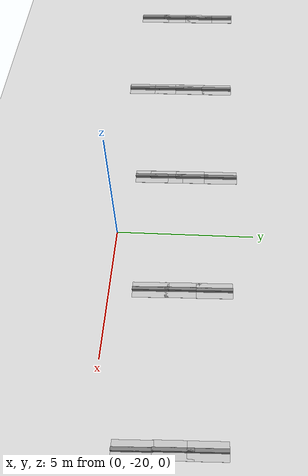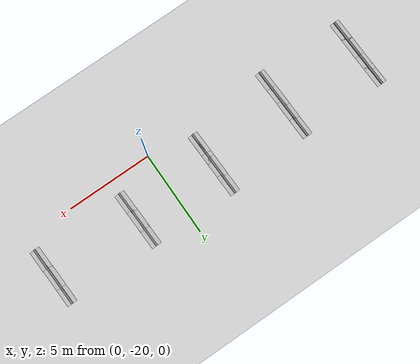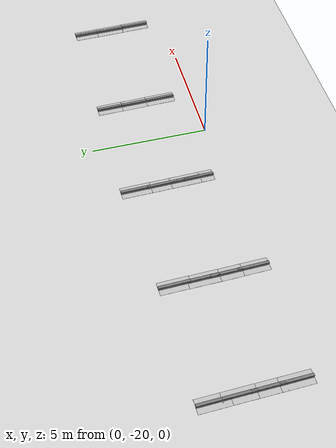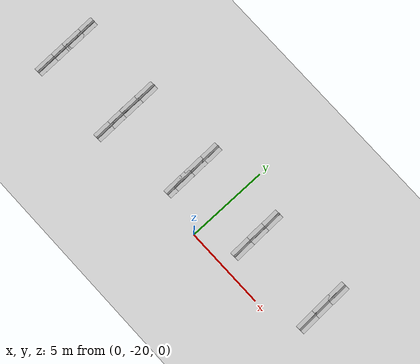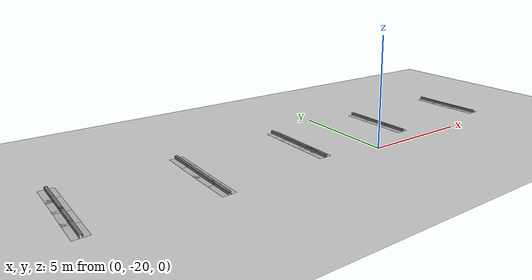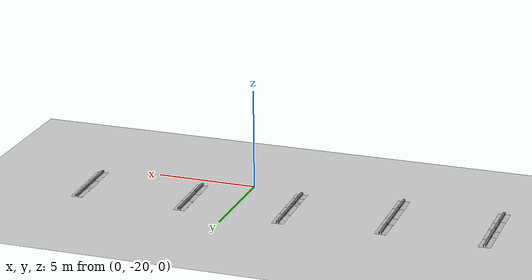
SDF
<sdf version="1.7">
 <world name="default">
  <model name="ground_plane">
   <static>1</static>
   <link name="link">
    <collision name="collision">
     <geometry><plane><normal>0 0 1</normal><size>100 100</size></plane></geometry>
     <surface>
      <contact><collide_bitmask>65535</collide_bitmask></contact>
      <friction><ode><mu>100</mu><mu2>50</mu2></ode></friction>
     </surface>
    </collision>
    <visual name="visual">
     <cast_shadows>0</cast_shadows>
     <geometry><plane><normal>0 0 1</normal><size>100 100</size></plane></geometry>
     <material>
      <script><uri>file://media/materials/scripts/gazebo.material</uri><name>Gazebo/Grey</name></script>
     </material>
    </visual>
   </link>
  </model>
  <model name="frc2016_rockwall_clone_3">
   <static>1</static>
   <link name="link">
    <inertial>
     <mass>10</mass>
     <pose>0 0 0.08974 0 -0 0</pose>
     <inertia><ixx>0.327091</ixx><ixy>0</ixy><ixz>0</ixz><iyy>1.37417</iyy><iyz>0</iyz><izz>1.64109</izz></inertia>
    </inertial>
    <visual name="platform">
     <pose>0 0 0.06432 0 -0 0</pose>
     <geometry><box><size>1.27 0.5969 0.003175</size></box></geometry>
    </visual>
    <collision name="platform">
     <pose>0 0 0.06432 0 -0 0</pose>
     <geometry><box><size>1.27 0.5969 0.003175</size></box></geometry>
    </collision>
    <visual name="up1">
     <pose>0 0.05166 0.12537 0 -0 0</pose>
     <geometry><box><size>1.27 0.00462 0.11892</size></box></geometry>
     <material><ambient>0.46 0.46 0.46 1</ambient><diffuse>0.46 0.46 0.46 1</diffuse></material>
    </visual>
    <collision name="up1">
     <pose>0 0.05166 0.12537 0 -0 0</pose>
     <geometry><box><size>1.27 0.00462 0.11892</size></box></geometry>
    </collision>
    <visual name="up2">
     <pose>0 -0.05801 0.12537 0 -0 0</pose>
     <geometry><box><size>1.27 0.00462 0.11892</size></box></geometry>
     <material><ambient>0.46 0.46 0.46 1</ambient><diffuse>0.46 0.46 0.46 1</diffuse></material>
    </visual>
    <collision name="up2">
     <pose>0 -0.05801 0.12537 0 -0 0</pose>
     <geometry><box><size>1.27 0.00462 0.11892</size></box></geometry>
    </collision>
    <visual name="top">
     <pose>0 -0.00249 0.18252 0 -0 0</pose>
     <geometry><box><size>1.27 0.1143 0.00462</size></box></geometry>
     <material><ambient>0.46 0.46 0.46 1</ambient><diffuse>0.46 0.46 0.46 1</diffuse></material>
    </visual>
    <collision name="top">
     <pose>0 -0.00249 0.18252 0 -0 0</pose>
     <geometry><box><size>1.27 0.1143 0.00462</size></box></geometry>
    </collision>
   </link>
   <pose>7.71965 -16.3662 0 0 -0 1.59626</pose>
  </model>
  <model name="frc2016_rockwall_clone_4">
   <static>1</static>
   <link name="link">
    <inertial>
     <mass>10</mass>
     <pose>0 0 0.08974 0 -0 0</pose>
     <inertia><ixx>0.327091</ixx><ixy>0</ixy><ixz>0</ixz><iyy>1.37417</iyy><iyz>0</iyz><izz>1.64109</izz></inertia>
    </inertial>
    <visual name="platform">
     <pose>0 0 0.06432 0 -0 0</pose>
     <geometry><box><size>1.27 0.5969 0.003175</size></box></geometry>
    </visual>
    <collision name="platform">
     <pose>0 0 0.06432 0 -0 0</pose>
     <geometry><box><size>1.27 0.5969 0.003175</size></box></geometry>
    </collision>
    <visual name="up1">
     <pose>0 0.05166 0.12537 0 -0 0</pose>
     <geometry><box><size>1.27 0.00462 0.11892</size></box></geometry>
     <material><ambient>0.46 0.46 0.46 1</ambient><diffuse>0.46 0.46 0.46 1</diffuse></material>
    </visual>
    <collision name="up1">
     <pose>0 0.05166 0.12537 0 -0 0</pose>
     <geometry><box><size>1.27 0.00462 0.11892</size></box></geometry>
    </collision>
    <visual name="up2">
     <pose>0 -0.05801 0.12537 0 -0 0</pose>
     <geometry><box><size>1.27 0.00462 0.11892</size></box></geometry>
     <material><ambient>0.46 0.46 0.46 1</ambient><diffuse>0.46 0.46 0.46 1</diffuse></material>
    </visual>
    <collision name="up2">
     <pose>0 -0.05801 0.12537 0 -0 0</pose>
     <geometry><box><size>1.27 0.00462 0.11892</size></box></geometry>
    </collision>
    <visual name="top">
     <pose>0 -0.00249 0.18252 0 -0 0</pose>
     <geometry><box><size>1.27 0.1143 0.00462</size></box></geometry>
     <material><ambient>0.46 0.46 0.46 1</ambient><diffuse>0.46 0.46 0.46 1</diffuse></material>
    </visual>
    <collision name="top">
     <pose>0 -0.00249 0.18252 0 -0 0</pose>
     <geometry><box><size>1.27 0.1143 0.00462</size></box></geometry>
    </collision>
   </link>
   <pose>7.7425 -17.4078 0 0 -0 1.59626</pose>
  </model>
  <model name="frc2016_rockwall_clone_5">
   <static>1</static>
   <link name="link">
    <inertial>
     <mass>10</mass>
     <pose>0 0 0.08974 0 -0 0</pose>
     <inertia><ixx>0.327091</ixx><ixy>0</ixy><ixz>0</ixz><iyy>1.37417</iyy><iyz>0</iyz><izz>1.64109</izz></inertia>
    </inertial>
    <visual name="platform">
     <pose>0 0 0.06432 0 -0 0</pose>
     <geometry><box><size>1.27 0.5969 0.003175</size></box></geometry>
    </visual>
    <collision name="platform">
     <pose>0 0 0.06432 0 -0 0</pose>
     <geometry><box><size>1.27 0.5969 0.003175</size></box></geometry>
    </collision>
    <visual name="up1">
     <pose>0 0.05166 0.12537 0 -0 0</pose>
     <geometry><box><size>1.27 0.00462 0.11892</size></box></geometry>
     <material><ambient>0.46 0.46 0.46 1</ambient><diffuse>0.46 0.46 0.46 1</diffuse></material>
    </visual>
    <collision name="up1">
     <pose>0 0.05166 0.12537 0 -0 0</pose>
     <geometry><box><size>1.27 0.00462 0.11892</size></box></geometry>
    </collision>
    <visual name="up2">
     <pose>0 -0.05801 0.12537 0 -0 0</pose>
     <geometry><box><size>1.27 0.00462 0.11892</size></box></geometry>
     <material><ambient>0.46 0.46 0.46 1</ambient><diffuse>0.46 0.46 0.46 1</diffuse></material>
    </visual>
    <collision name="up2">
     <pose>0 -0.05801 0.12537 0 -0 0</pose>
     <geometry><box><size>1.27 0.00462 0.11892</size></box></geometry>
    </collision>
    <visual name="top">
     <pose>0 -0.00249 0.18252 0 -0 0</pose>
     <geometry><box><size>1.27 0.1143 0.00462</size></box></geometry>
     <material><ambient>0.46 0.46 0.46 1</ambient><diffuse>0.46 0.46 0.46 1</diffuse></material>
    </visual>
    <collision name="top">
     <pose>0 -0.00249 0.18252 0 -0 0</pose>
     <geometry><box><size>1.27 0.1143 0.00462</size></box></geometry>
    </collision>
   </link>
   <pose>7.78797 -18.6274 0 0 -0 1.59626</pose>
  </model>
  <model name="frc2016_rockwall_clone_11">
   <static>1</static>
   <link name="link">
    <inertial>
     <mass>10</mass>
     <pose>0 0 0.08974 0 -0 0</pose>
     <inertia><ixx>0.327091</ixx><ixy>0</ixy><ixz>0</ixz><iyy>1.37417</iyy><iyz>0</iyz><izz>1.64109</izz></inertia>
    </inertial>
    <visual name="platform">
     <pose>0 0 0.06432 0 -0 0</pose>
     <geometry><box><size>1.27 0.5969 0.003175</size></box></geometry>
    </visual>
    <collision name="platform">
     <pose>0 0 0.06432 0 -0 0</pose>
     <geometry><box><size>1.27 0.5969 0.003175</size></box></geometry>
    </collision>
    <visual name="up1">
     <pose>0 0.05166 0.12537 0 -0 0</pose>
     <geometry><box><size>1.27 0.00462 0.11892</size></box></geometry>
     <material><ambient>0.46 0.46 0.46 1</ambient><diffuse>0.46 0.46 0.46 1</diffuse></material>
    </visual>
    <collision name="up1">
     <pose>0 0.05166 0.12537 0 -0 0</pose>
     <geometry><box><size>1.27 0.00462 0.11892</size></box></geometry>
    </collision>
    <visual name="up2">
     <pose>0 -0.05801 0.12537 0 -0 0</pose>
     <geometry><box><size>1.27 0.00462 0.11892</size></box></geometry>
     <material><ambient>0.46 0.46 0.46 1</ambient><diffuse>0.46 0.46 0.46 1</diffuse></material>
    </visual>
    <collision name="up2">
     <pose>0 -0.05801 0.12537 0 -0 0</pose>
     <geometry><box><size>1.27 0.00462 0.11892</size></box></geometry>
    </collision>
    <visual name="top">
     <pose>0 -0.00249 0.18252 0 -0 0</pose>
     <geometry><box><size>1.27 0.1143 0.00462</size></box></geometry>
     <material><ambient>0.46 0.46 0.46 1</ambient><diffuse>0.46 0.46 0.46 1</diffuse></material>
    </visual>
    <collision name="top">
     <pose>0 -0.00249 0.18252 0 -0 0</pose>
     <geometry><box><size>1.27 0.1143 0.00462</size></box></geometry>
    </collision>
   </link>
   <pose>2.3436 -16.3416 0 0 -0 1.59626</pose>
  </model>
  <model name="frc2016_rockwall_clone_12">
   <static>1</static>
   <link name="link">
    <inertial>
     <mass>10</mass>
     <pose>0 0 0.08974 0 -0 0</pose>
     <inertia><ixx>0.327091</ixx><ixy>0</ixy><ixz>0</ixz><iyy>1.37417</iyy><iyz>0</iyz><izz>1.64109</izz></inertia>
    </inertial>
    <visual name="platform">
     <pose>0 0 0.06432 0 -0 0</pose>
     <geometry><box><size>1.27 0.5969 0.003175</size></box></geometry>
    </visual>
    <collision name="platform">
     <pose>0 0 0.06432 0 -0 0</pose>
     <geometry><box><size>1.27 0.5969 0.003175</size></box></geometry>
    </collision>
    <visual name="up1">
     <pose>0 0.05166 0.12537 0 -0 0</pose>
     <geometry><box><size>1.27 0.00462 0.11892</size></box></geometry>
     <material><ambient>0.46 0.46 0.46 1</ambient><diffuse>0.46 0.46 0.46 1</diffuse></material>
    </visual>
    <collision name="up1">
     <pose>0 0.05166 0.12537 0 -0 0</pose>
     <geometry><box><size>1.27 0.00462 0.11892</size></box></geometry>
    </collision>
    <visual name="up2">
     <pose>0 -0.05801 0.12537 0 -0 0</pose>
     <geometry><box><size>1.27 0.00462 0.11892</size></box></geometry>
     <material><ambient>0.46 0.46 0.46 1</ambient><diffuse>0.46 0.46 0.46 1</diffuse></material>
    </visual>
    <collision name="up2">
     <pose>0 -0.05801 0.12537 0 -0 0</pose>
     <geometry><box><size>1.27 0.00462 0.11892</size></box></geometry>
    </collision>
    <visual name="top">
     <pose>0 -0.00249 0.18252 0 -0 0</pose>
     <geometry><box><size>1.27 0.1143 0.00462</size></box></geometry>
     <material><ambient>0.46 0.46 0.46 1</ambient><diffuse>0.46 0.46 0.46 1</diffuse></material>
    </visual>
    <collision name="top">
     <pose>0 -0.00249 0.18252 0 -0 0</pose>
     <geometry><box><size>1.27 0.1143 0.00462</size></box></geometry>
    </collision>
   </link>
   <pose>2.36356 -17.4332 0 0 -0 1.59626</pose>
  </model>
  <model name="frc2016_rockwall_clone_13">
   <static>1</static>
   <link name="link">
    <inertial>
     <mass>10</mass>
     <pose>0 0 0.08974 0 -0 0</pose>
     <inertia><ixx>0.327091</ixx><ixy>0</ixy><ixz>0</ixz><iyy>1.37417</iyy><iyz>0</iyz><izz>1.64109</izz></inertia>
    </inertial>
    <visual name="platform">
     <pose>0 0 0.06432 0 -0 0</pose>
     <geometry><box><size>1.27 0.5969 0.003175</size></box></geometry>
    </visual>
    <collision name="platform">
     <pose>0 0 0.06432 0 -0 0</pose>
     <geometry><box><size>1.27 0.5969 0.003175</size></box></geometry>
    </collision>
    <visual name="up1">
     <pose>0 0.05166 0.12537 0 -0 0</pose>
     <geometry><box><size>1.27 0.00462 0.11892</size></box></geometry>
     <material><ambient>0.46 0.46 0.46 1</ambient><diffuse>0.46 0.46 0.46 1</diffuse></material>
    </visual>
    <collision name="up1">
     <pose>0 0.05166 0.12537 0 -0 0</pose>
     <geometry><box><size>1.27 0.00462 0.11892</size></box></geometry>
    </collision>
    <visual name="up2">
     <pose>0 -0.05801 0.12537 0 -0 0</pose>
     <geometry><box><size>1.27 0.00462 0.11892</size></box></geometry>
     <material><ambient>0.46 0.46 0.46 1</ambient><diffuse>0.46 0.46 0.46 1</diffuse></material>
    </visual>
    <collision name="up2">
     <pose>0 -0.05801 0.12537 0 -0 0</pose>
     <geometry><box><size>1.27 0.00462 0.11892</size></box></geometry>
    </collision>
    <visual name="top">
     <pose>0 -0.00249 0.18252 0 -0 0</pose>
     <geometry><box><size>1.27 0.1143 0.00462</size></box></geometry>
     <material><ambient>0.46 0.46 0.46 1</ambient><diffuse>0.46 0.46 0.46 1</diffuse></material>
    </visual>
    <collision name="top">
     <pose>0 -0.00249 0.18252 0 -0 0</pose>
     <geometry><box><size>1.27 0.1143 0.00462</size></box></geometry>
    </collision>
   </link>
   <pose>2.39785 -18.5562 0 0 -0 1.59626</pose>
  </model>
  <model name="frc2016_rockwall_clone_19">
   <static>1</static>
   <link name="link">
    <inertial>
     <mass>10</mass>
     <pose>0 0 0.08974 0 -0 0</pose>
     <inertia><ixx>0.327091</ixx><ixy>0</ixy><ixz>0</ixz><iyy>1.37417</iyy><iyz>0</iyz><izz>1.64109</izz></inertia>
    </inertial>
    <visual name="platform">
     <pose>0 0 0.06432 0 -0 0</pose>
     <geometry><box><size>1.27 0.5969 0.003175</size></box></geometry>
    </visual>
    <collision name="platform">
     <pose>0 0 0.06432 0 -0 0</pose>
     <geometry><box><size>1.27 0.5969 0.003175</size></box></geometry>
    </collision>
    <visual name="up1">
     <pose>0 0.05166 0.12537 0 -0 0</pose>
     <geometry><box><size>1.27 0.00462 0.11892</size></box></geometry>
     <material><ambient>0.46 0.46 0.46 1</ambient><diffuse>0.46 0.46 0.46 1</diffuse></material>
    </visual>
    <collision name="up1">
     <pose>0 0.05166 0.12537 0 -0 0</pose>
     <geometry><box><size>1.27 0.00462 0.11892</size></box></geometry>
    </collision>
    <visual name="up2">
     <pose>0 -0.05801 0.12537 0 -0 0</pose>
     <geometry><box><size>1.27 0.00462 0.11892</size></box></geometry>
     <material><ambient>0.46 0.46 0.46 1</ambient><diffuse>0.46 0.46 0.46 1</diffuse></material>
    </visual>
    <collision name="up2">
     <pose>0 -0.05801 0.12537 0 -0 0</pose>
     <geometry><box><size>1.27 0.00462 0.11892</size></box></geometry>
    </collision>
    <visual name="top">
     <pose>0 -0.00249 0.18252 0 -0 0</pose>
     <geometry><box><size>1.27 0.1143 0.00462</size></box></geometry>
     <material><ambient>0.46 0.46 0.46 1</ambient><diffuse>0.46 0.46 0.46 1</diffuse></material>
    </visual>
    <collision name="top">
     <pose>0 -0.00249 0.18252 0 -0 0</pose>
     <geometry><box><size>1.27 0.1143 0.00462</size></box></geometry>
    </collision>
   </link>
   <pose>-2.71544 -16.2668 0 0 -0 1.59626</pose>
  </model>
  <model name="frc2016_rockwall_clone_20">
   <static>1</static>
   <link name="link">
    <inertial>
     <mass>10</mass>
     <pose>0 0 0.08974 0 -0 0</pose>
     <inertia><ixx>0.327091</ixx><ixy>0</ixy><ixz>0</ixz><iyy>1.37417</iyy><iyz>0</iyz><izz>1.64109</izz></inertia>
    </inertial>
    <visual name="platform">
     <pose>0 0 0.06432 0 -0 0</pose>
     <geometry><box><size>1.27 0.5969 0.003175</size></box></geometry>
    </visual>
    <collision name="platform">
     <pose>0 0 0.06432 0 -0 0</pose>
     <geometry><box><size>1.27 0.5969 0.003175</size></box></geometry>
    </collision>
    <visual name="up1">
     <pose>0 0.05166 0.12537 0 -0 0</pose>
     <geometry><box><size>1.27 0.00462 0.11892</size></box></geometry>
     <material><ambient>0.46 0.46 0.46 1</ambient><diffuse>0.46 0.46 0.46 1</diffuse></material>
    </visual>
    <collision name="up1">
     <pose>0 0.05166 0.12537 0 -0 0</pose>
     <geometry><box><size>1.27 0.00462 0.11892</size></box></geometry>
    </collision>
    <visual name="up2">
     <pose>0 -0.05801 0.12537 0 -0 0</pose>
     <geometry><box><size>1.27 0.00462 0.11892</size></box></geometry>
     <material><ambient>0.46 0.46 0.46 1</ambient><diffuse>0.46 0.46 0.46 1</diffuse></material>
    </visual>
    <collision name="up2">
     <pose>0 -0.05801 0.12537 0 -0 0</pose>
     <geometry><box><size>1.27 0.00462 0.11892</size></box></geometry>
    </collision>
    <visual name="top">
     <pose>0 -0.00249 0.18252 0 -0 0</pose>
     <geometry><box><size>1.27 0.1143 0.00462</size></box></geometry>
     <material><ambient>0.46 0.46 0.46 1</ambient><diffuse>0.46 0.46 0.46 1</diffuse></material>
    </visual>
    <collision name="top">
     <pose>0 -0.00249 0.18252 0 -0 0</pose>
     <geometry><box><size>1.27 0.1143 0.00462</size></box></geometry>
    </collision>
   </link>
   <pose>-2.69619 -17.3836 0 0 -0 1.59626</pose>
  </model>
  <model name="frc2016_rockwall_clone_21">
   <static>1</static>
   <link name="link">
    <inertial>
     <mass>10</mass>
     <pose>0 0 0.08974 0 -0 0</pose>
     <inertia><ixx>0.327091</ixx><ixy>0</ixy><ixz>0</ixz><iyy>1.37417</iyy><iyz>0</iyz><izz>1.64109</izz></inertia>
    </inertial>
    <visual name="platform">
     <pose>0 0 0.06432 0 -0 0</pose>
     <geometry><box><size>1.27 0.5969 0.003175</size></box></geometry>
    </visual>
    <collision name="platform">
     <pose>0 0 0.06432 0 -0 0</pose>
     <geometry><box><size>1.27 0.5969 0.003175</size></box></geometry>
    </collision>
    <visual name="up1">
     <pose>0 0.05166 0.12537 0 -0 0</pose>
     <geometry><box><size>1.27 0.00462 0.11892</size></box></geometry>
     <material><ambient>0.46 0.46 0.46 1</ambient><diffuse>0.46 0.46 0.46 1</diffuse></material>
    </visual>
    <collision name="up1">
     <pose>0 0.05166 0.12537 0 -0 0</pose>
     <geometry><box><size>1.27 0.00462 0.11892</size></box></geometry>
    </collision>
    <visual name="up2">
     <pose>0 -0.05801 0.12537 0 -0 0</pose>
     <geometry><box><size>1.27 0.00462 0.11892</size></box></geometry>
     <material><ambient>0.46 0.46 0.46 1</ambient><diffuse>0.46 0.46 0.46 1</diffuse></material>
    </visual>
    <collision name="up2">
     <pose>0 -0.05801 0.12537 0 -0 0</pose>
     <geometry><box><size>1.27 0.00462 0.11892</size></box></geometry>
    </collision>
    <visual name="top">
     <pose>0 -0.00249 0.18252 0 -0 0</pose>
     <geometry><box><size>1.27 0.1143 0.00462</size></box></geometry>
     <material><ambient>0.46 0.46 0.46 1</ambient><diffuse>0.46 0.46 0.46 1</diffuse></material>
    </visual>
    <collision name="top">
     <pose>0 -0.00249 0.18252 0 -0 0</pose>
     <geometry><box><size>1.27 0.1143 0.00462</size></box></geometry>
    </collision>
   </link>
   <pose>-2.67398 -18.3761 0 0 -0 1.59626</pose>
  </model>
  <model name="frc2016_rockwall_clone_22">
   <static>1</static>
   <link name="link">
    <inertial>
     <mass>10</mass>
     <pose>0 0 0.08974 0 -0 0</pose>
     <inertia><ixx>0.327091</ixx><ixy>0</ixy><ixz>0</ixz><iyy>1.37417</iyy><iyz>0</iyz><izz>1.64109</izz></inertia>
    </inertial>
    <visual name="platform">
     <pose>0 0 0.06432 0 -0 0</pose>
     <geometry><box><size>1.27 0.5969 0.003175</size></box></geometry>
    </visual>
    <collision name="platform">
     <pose>0 0 0.06432 0 -0 0</pose>
     <geometry><box><size>1.27 0.5969 0.003175</size></box></geometry>
    </collision>
    <visual name="up1">
     <pose>0 0.05166 0.12537 0 -0 0</pose>
     <geometry><box><size>1.27 0.00462 0.11892</size></box></geometry>
     <material><ambient>0.46 0.46 0.46 1</ambient><diffuse>0.46 0.46 0.46 1</diffuse></material>
    </visual>
    <collision name="up1">
     <pose>0 0.05166 0.12537 0 -0 0</pose>
     <geometry><box><size>1.27 0.00462 0.11892</size></box></geometry>
    </collision>
    <visual name="up2">
     <pose>0 -0.05801 0.12537 0 -0 0</pose>
     <geometry><box><size>1.27 0.00462 0.11892</size></box></geometry>
     <material><ambient>0.46 0.46 0.46 1</ambient><diffuse>0.46 0.46 0.46 1</diffuse></material>
    </visual>
    <collision name="up2">
     <pose>0 -0.05801 0.12537 0 -0 0</pose>
     <geometry><box><size>1.27 0.00462 0.11892</size></box></geometry>
    </collision>
    <visual name="top">
     <pose>0 -0.00249 0.18252 0 -0 0</pose>
     <geometry><box><size>1.27 0.1143 0.00462</size></box></geometry>
     <material><ambient>0.46 0.46 0.46 1</ambient><diffuse>0.46 0.46 0.46 1</diffuse></material>
    </visual>
    <collision name="top">
     <pose>0 -0.00249 0.18252 0 -0 0</pose>
     <geometry><box><size>1.27 0.1143 0.00462</size></box></geometry>
    </collision>
   </link>
   <pose>-2.66459 -18.9464 0 0 -0 1.59626</pose>
  </model>
  <model name="frc2016_rockwall_clone_28">
   <static>1</static>
   <link name="link">
    <inertial>
     <mass>10</mass>
     <pose>0 0 0.08974 0 -0 0</pose>
     <inertia><ixx>0.327091</ixx><ixy>0</ixy><ixz>0</ixz><iyy>1.37417</iyy><iyz>0</iyz><izz>1.64109</izz></inertia>
    </inertial>
    <visual name="platform">
     <pose>0 0 0.06432 0 -0 0</pose>
     <geometry><box><size>1.27 0.5969 0.003175</size></box></geometry>
    </visual>
    <collision name="platform">
     <pose>0 0 0.06432 0 -0 0</pose>
     <geometry><box><size>1.27 0.5969 0.003175</size></box></geometry>
    </collision>
    <visual name="up1">
     <pose>0 0.05166 0.12537 0 -0 0</pose>
     <geometry><box><size>1.27 0.00462 0.11892</size></box></geometry>
     <material><ambient>0.46 0.46 0.46 1</ambient><diffuse>0.46 0.46 0.46 1</diffuse></material>
    </visual>
    <collision name="up1">
     <pose>0 0.05166 0.12537 0 -0 0</pose>
     <geometry><box><size>1.27 0.00462 0.11892</size></box></geometry>
    </collision>
    <visual name="up2">
     <pose>0 -0.05801 0.12537 0 -0 0</pose>
     <geometry><box><size>1.27 0.00462 0.11892</size></box></geometry>
     <material><ambient>0.46 0.46 0.46 1</ambient><diffuse>0.46 0.46 0.46 1</diffuse></material>
    </visual>
    <collision name="up2">
     <pose>0 -0.05801 0.12537 0 -0 0</pose>
     <geometry><box><size>1.27 0.00462 0.11892</size></box></geometry>
    </collision>
    <visual name="top">
     <pose>0 -0.00249 0.18252 0 -0 0</pose>
     <geometry><box><size>1.27 0.1143 0.00462</size></box></geometry>
     <material><ambient>0.46 0.46 0.46 1</ambient><diffuse>0.46 0.46 0.46 1</diffuse></material>
    </visual>
    <collision name="top">
     <pose>0 -0.00249 0.18252 0 -0 0</pose>
     <geometry><box><size>1.27 0.1143 0.00462</size></box></geometry>
    </collision>
   </link>
   <pose>-7.72585 -16.5732 0 0 -0 1.59626</pose>
  </model>
  <model name="frc2016_rockwall_clone_29">
   <static>1</static>
   <link name="link">
    <inertial>
     <mass>10</mass>
     <pose>0 0 0.08974 0 -0 0</pose>
     <inertia><ixx>0.327091</ixx><ixy>0</ixy><ixz>0</ixz><iyy>1.37417</iyy><iyz>0</iyz><izz>1.64109</izz></inertia>
    </inertial>
    <visual name="platform">
     <pose>0 0 0.06432 0 -0 0</pose>
     <geometry><box><size>1.27 0.5969 0.003175</size></box></geometry>
    </visual>
    <collision name="platform">
     <pose>0 0 0.06432 0 -0 0</pose>
     <geometry><box><size>1.27 0.5969 0.003175</size></box></geometry>
    </collision>
    <visual name="up1">
     <pose>0 0.05166 0.12537 0 -0 0</pose>
     <geometry><box><size>1.27 0.00462 0.11892</size></box></geometry>
     <material><ambient>0.46 0.46 0.46 1</ambient><diffuse>0.46 0.46 0.46 1</diffuse></material>
    </visual>
    <collision name="up1">
     <pose>0 0.05166 0.12537 0 -0 0</pose>
     <geometry><box><size>1.27 0.00462 0.11892</size></box></geometry>
    </collision>
    <visual name="up2">
     <pose>0 -0.05801 0.12537 0 -0 0</pose>
     <geometry><box><size>1.27 0.00462 0.11892</size></box></geometry>
     <material><ambient>0.46 0.46 0.46 1</ambient><diffuse>0.46 0.46 0.46 1</diffuse></material>
    </visual>
    <collision name="up2">
     <pose>0 -0.05801 0.12537 0 -0 0</pose>
     <geometry><box><size>1.27 0.00462 0.11892</size></box></geometry>
    </collision>
    <visual name="top">
     <pose>0 -0.00249 0.18252 0 -0 0</pose>
     <geometry><box><size>1.27 0.1143 0.00462</size></box></geometry>
     <material><ambient>0.46 0.46 0.46 1</ambient><diffuse>0.46 0.46 0.46 1</diffuse></material>
    </visual>
    <collision name="top">
     <pose>0 -0.00249 0.18252 0 -0 0</pose>
     <geometry><box><size>1.27 0.1143 0.00462</size></box></geometry>
    </collision>
   </link>
   <pose>-7.70714 -17.7211 0 0 -0 1.59626</pose>
  </model>
  <model name="frc2016_rockwall_clone_30">
   <static>1</static>
   <link name="link">
    <inertial>
     <mass>10</mass>
     <pose>0 0 0.08974 0 -0 0</pose>
     <inertia><ixx>0.327091</ixx><ixy>0</ixy><ixz>0</ixz><iyy>1.37417</iyy><iyz>0</iyz><izz>1.64109</izz></inertia>
    </inertial>
    <visual name="platform">
     <pose>0 0 0.06432 0 -0 0</pose>
     <geometry><box><size>1.27 0.5969 0.003175</size></box></geometry>
    </visual>
    <collision name="platform">
     <pose>0 0 0.06432 0 -0 0</pose>
     <geometry><box><size>1.27 0.5969 0.003175</size></box></geometry>
    </collision>
    <visual name="up1">
     <pose>0 0.05166 0.12537 0 -0 0</pose>
     <geometry><box><size>1.27 0.00462 0.11892</size></box></geometry>
     <material><ambient>0.46 0.46 0.46 1</ambient><diffuse>0.46 0.46 0.46 1</diffuse></material>
    </visual>
    <collision name="up1">
     <pose>0 0.05166 0.12537 0 -0 0</pose>
     <geometry><box><size>1.27 0.00462 0.11892</size></box></geometry>
    </collision>
    <visual name="up2">
     <pose>0 -0.05801 0.12537 0 -0 0</pose>
     <geometry><box><size>1.27 0.00462 0.11892</size></box></geometry>
     <material><ambient>0.46 0.46 0.46 1</ambient><diffuse>0.46 0.46 0.46 1</diffuse></material>
    </visual>
    <collision name="up2">
     <pose>0 -0.05801 0.12537 0 -0 0</pose>
     <geometry><box><size>1.27 0.00462 0.11892</size></box></geometry>
    </collision>
    <visual name="top">
     <pose>0 -0.00249 0.18252 0 -0 0</pose>
     <geometry><box><size>1.27 0.1143 0.00462</size></box></geometry>
     <material><ambient>0.46 0.46 0.46 1</ambient><diffuse>0.46 0.46 0.46 1</diffuse></material>
    </visual>
    <collision name="top">
     <pose>0 -0.00249 0.18252 0 -0 0</pose>
     <geometry><box><size>1.27 0.1143 0.00462</size></box></geometry>
    </collision>
   </link>
   <pose>-7.69174 -18.6256 0 0 -0 1.59626</pose>
  </model>
  <model name="frc2016_rockwall_clone_31">
   <static>1</static>
   <link name="link">
    <inertial>
     <mass>10</mass>
     <pose>0 0 0.08974 0 -0 0</pose>
     <inertia><ixx>0.327091</ixx><ixy>0</ixy><ixz>0</ixz><iyy>1.37417</iyy><iyz>0</iyz><izz>1.64109</izz></inertia>
    </inertial>
    <visual name="platform">
     <pose>0 0 0.06432 0 -0 0</pose>
     <geometry><box><size>1.27 0.5969 0.003175</size></box></geometry>
    </visual>
    <collision name="platform">
     <pose>0 0 0.06432 0 -0 0</pose>
     <geometry><box><size>1.27 0.5969 0.003175</size></box></geometry>
    </collision>
    <visual name="up1">
     <pose>0 0.05166 0.12537 0 -0 0</pose>
     <geometry><box><size>1.27 0.00462 0.11892</size></box></geometry>
     <material><ambient>0.46 0.46 0.46 1</ambient><diffuse>0.46 0.46 0.46 1</diffuse></material>
    </visual>
    <collision name="up1">
     <pose>0 0.05166 0.12537 0 -0 0</pose>
     <geometry><box><size>1.27 0.00462 0.11892</size></box></geometry>
    </collision>
    <visual name="up2">
     <pose>0 -0.05801 0.12537 0 -0 0</pose>
     <geometry><box><size>1.27 0.00462 0.11892</size></box></geometry>
     <material><ambient>0.46 0.46 0.46 1</ambient><diffuse>0.46 0.46 0.46 1</diffuse></material>
    </visual>
    <collision name="up2">
     <pose>0 -0.05801 0.12537 0 -0 0</pose>
     <geometry><box><size>1.27 0.00462 0.11892</size></box></geometry>
    </collision>
    <visual name="top">
     <pose>0 -0.00249 0.18252 0 -0 0</pose>
     <geometry><box><size>1.27 0.1143 0.00462</size></box></geometry>
     <material><ambient>0.46 0.46 0.46 1</ambient><diffuse>0.46 0.46 0.46 1</diffuse></material>
    </visual>
    <collision name="top">
     <pose>0 -0.00249 0.18252 0 -0 0</pose>
     <geometry><box><size>1.27 0.1143 0.00462</size></box></geometry>
    </collision>
   </link>
   <pose>-7.65955 -19.7047 0 0 -0 1.59626</pose>
  </model>
  <model name="frc2016_rockwall_clone_39">
   <static>1</static>
   <link name="link">
    <inertial>
     <mass>10</mass>
     <pose>0 0 0.08974 0 -0 0</pose>
     <inertia><ixx>0.327091</ixx><ixy>0</ixy><ixz>0</ixz><iyy>1.37417</iyy><iyz>0</iyz><izz>1.64109</izz></inertia>
    </inertial>
    <visual name="platform">
     <pose>0 0 0.06432 0 -0 0</pose>
     <geometry><box><size>1.27 0.5969 0.003175</size></box></geometry>
    </visual>
    <collision name="platform">
     <pose>0 0 0.06432 0 -0 0</pose>
     <geometry><box><size>1.27 0.5969 0.003175</size></box></geometry>
    </collision>
    <visual name="up1">
     <pose>0 0.05166 0.12537 0 -0 0</pose>
     <geometry><box><size>1.27 0.00462 0.11892</size></box></geometry>
     <material><ambient>0.46 0.46 0.46 1</ambient><diffuse>0.46 0.46 0.46 1</diffuse></material>
    </visual>
    <collision name="up1">
     <pose>0 0.05166 0.12537 0 -0 0</pose>
     <geometry><box><size>1.27 0.00462 0.11892</size></box></geometry>
    </collision>
    <visual name="up2">
     <pose>0 -0.05801 0.12537 0 -0 0</pose>
     <geometry><box><size>1.27 0.00462 0.11892</size></box></geometry>
     <material><ambient>0.46 0.46 0.46 1</ambient><diffuse>0.46 0.46 0.46 1</diffuse></material>
    </visual>
    <collision name="up2">
     <pose>0 -0.05801 0.12537 0 -0 0</pose>
     <geometry><box><size>1.27 0.00462 0.11892</size></box></geometry>
    </collision>
    <visual name="top">
     <pose>0 -0.00249 0.18252 0 -0 0</pose>
     <geometry><box><size>1.27 0.1143 0.00462</size></box></geometry>
     <material><ambient>0.46 0.46 0.46 1</ambient><diffuse>0.46 0.46 0.46 1</diffuse></material>
    </visual>
    <collision name="top">
     <pose>0 -0.00249 0.18252 0 -0 0</pose>
     <geometry><box><size>1.27 0.1143 0.00462</size></box></geometry>
    </collision>
   </link>
   <pose>-12.7588 -16.6091 0 0 -0 1.59626</pose>
  </model>
  <model name="frc2016_rockwall_clone_40">
   <static>1</static>
   <link name="link">
    <inertial>
     <mass>10</mass>
     <pose>0 0 0.08974 0 -0 0</pose>
     <inertia><ixx>0.327091</ixx><ixy>0</ixy><ixz>0</ixz><iyy>1.37417</iyy><iyz>0</iyz><izz>1.64109</izz></inertia>
    </inertial>
    <visual name="platform">
     <pose>0 0 0.06432 0 -0 0</pose>
     <geometry><box><size>1.27 0.5969 0.003175</size></box></geometry>
    </visual>
    <collision name="platform">
     <pose>0 0 0.06432 0 -0 0</pose>
     <geometry><box><size>1.27 0.5969 0.003175</size></box></geometry>
    </collision>
    <visual name="up1">
     <pose>0 0.05166 0.12537 0 -0 0</pose>
     <geometry><box><size>1.27 0.00462 0.11892</size></box></geometry>
     <material><ambient>0.46 0.46 0.46 1</ambient><diffuse>0.46 0.46 0.46 1</diffuse></material>
    </visual>
    <collision name="up1">
     <pose>0 0.05166 0.12537 0 -0 0</pose>
     <geometry><box><size>1.27 0.00462 0.11892</size></box></geometry>
    </collision>
    <visual name="up2">
     <pose>0 -0.05801 0.12537 0 -0 0</pose>
     <geometry><box><size>1.27 0.00462 0.11892</size></box></geometry>
     <material><ambient>0.46 0.46 0.46 1</ambient><diffuse>0.46 0.46 0.46 1</diffuse></material>
    </visual>
    <collision name="up2">
     <pose>0 -0.05801 0.12537 0 -0 0</pose>
     <geometry><box><size>1.27 0.00462 0.11892</size></box></geometry>
    </collision>
    <visual name="top">
     <pose>0 -0.00249 0.18252 0 -0 0</pose>
     <geometry><box><size>1.27 0.1143 0.00462</size></box></geometry>
     <material><ambient>0.46 0.46 0.46 1</ambient><diffuse>0.46 0.46 0.46 1</diffuse></material>
    </visual>
    <collision name="top">
     <pose>0 -0.00249 0.18252 0 -0 0</pose>
     <geometry><box><size>1.27 0.1143 0.00462</size></box></geometry>
    </collision>
   </link>
   <pose>-12.7337 -17.5594 0 0 -0 1.59626</pose>
  </model>
  <model name="frc2016_rockwall_clone_41">
   <static>1</static>
   <link name="link">
    <inertial>
     <mass>10</mass>
     <pose>0 0 0.08974 0 -0 0</pose>
     <inertia><ixx>0.327091</ixx><ixy>0</ixy><ixz>0</ixz><iyy>1.37417</iyy><iyz>0</iyz><izz>1.64109</izz></inertia>
    </inertial>
    <visual name="platform">
     <pose>0 0 0.06432 0 -0 0</pose>
     <geometry><box><size>1.27 0.5969 0.003175</size></box></geometry>
    </visual>
    <collision name="platform">
     <pose>0 0 0.06432 0 -0 0</pose>
     <geometry><box><size>1.27 0.5969 0.003175</size></box></geometry>
    </collision>
    <visual name="up1">
     <pose>0 0.05166 0.12537 0 -0 0</pose>
     <geometry><box><size>1.27 0.00462 0.11892</size></box></geometry>
     <material><ambient>0.46 0.46 0.46 1</ambient><diffuse>0.46 0.46 0.46 1</diffuse></material>
    </visual>
    <collision name="up1">
     <pose>0 0.05166 0.12537 0 -0 0</pose>
     <geometry><box><size>1.27 0.00462 0.11892</size></box></geometry>
    </collision>
    <visual name="up2">
     <pose>0 -0.05801 0.12537 0 -0 0</pose>
     <geometry><box><size>1.27 0.00462 0.11892</size></box></geometry>
     <material><ambient>0.46 0.46 0.46 1</ambient><diffuse>0.46 0.46 0.46 1</diffuse></material>
    </visual>
    <collision name="up2">
     <pose>0 -0.05801 0.12537 0 -0 0</pose>
     <geometry><box><size>1.27 0.00462 0.11892</size></box></geometry>
    </collision>
    <visual name="top">
     <pose>0 -0.00249 0.18252 0 -0 0</pose>
     <geometry><box><size>1.27 0.1143 0.00462</size></box></geometry>
     <material><ambient>0.46 0.46 0.46 1</ambient><diffuse>0.46 0.46 0.46 1</diffuse></material>
    </visual>
    <collision name="top">
     <pose>0 -0.00249 0.18252 0 -0 0</pose>
     <geometry><box><size>1.27 0.1143 0.00462</size></box></geometry>
    </collision>
   </link>
   <pose>-12.7111 -18.6035 0 0 -0 1.59626</pose>
  </model>
  <model name="frc2016_rockwall_clone_42">
   <static>1</static>
   <link name="link">
    <inertial>
     <mass>10</mass>
     <pose>0 0 0.08974 0 -0 0</pose>
     <inertia><ixx>0.327091</ixx><ixy>0</ixy><ixz>0</ixz><iyy>1.37417</iyy><iyz>0</iyz><izz>1.64109</izz></inertia>
    </inertial>
    <visual name="platform">
     <pose>0 0 0.06432 0 -0 0</pose>
     <geometry><box><size>1.27 0.5969 0.003175</size></box></geometry>
    </visual>
    <collision name="platform">
     <pose>0 0 0.06432 0 -0 0</pose>
     <geometry><box><size>1.27 0.5969 0.003175</size></box></geometry>
    </collision>
    <visual name="up1">
     <pose>0 0.05166 0.12537 0 -0 0</pose>
     <geometry><box><size>1.27 0.00462 0.11892</size></box></geometry>
     <material><ambient>0.46 0.46 0.46 1</ambient><diffuse>0.46 0.46 0.46 1</diffuse></material>
    </visual>
    <collision name="up1">
     <pose>0 0.05166 0.12537 0 -0 0</pose>
     <geometry><box><size>1.27 0.00462 0.11892</size></box></geometry>
    </collision>
    <visual name="up2">
     <pose>0 -0.05801 0.12537 0 -0 0</pose>
     <geometry><box><size>1.27 0.00462 0.11892</size></box></geometry>
     <material><ambient>0.46 0.46 0.46 1</ambient><diffuse>0.46 0.46 0.46 1</diffuse></material>
    </visual>
    <collision name="up2">
     <pose>0 -0.05801 0.12537 0 -0 0</pose>
     <geometry><box><size>1.27 0.00462 0.11892</size></box></geometry>
    </collision>
    <visual name="top">
     <pose>0 -0.00249 0.18252 0 -0 0</pose>
     <geometry><box><size>1.27 0.1143 0.00462</size></box></geometry>
     <material><ambient>0.46 0.46 0.46 1</ambient><diffuse>0.46 0.46 0.46 1</diffuse></material>
    </visual>
    <collision name="top">
     <pose>0 -0.00249 0.18252 0 -0 0</pose>
     <geometry><box><size>1.27 0.1143 0.00462</size></box></geometry>
    </collision>
   </link>
   <pose>-12.6884 -19.648 0 0 -0 1.59626</pose>
  </model>
 </world>
</sdf>
